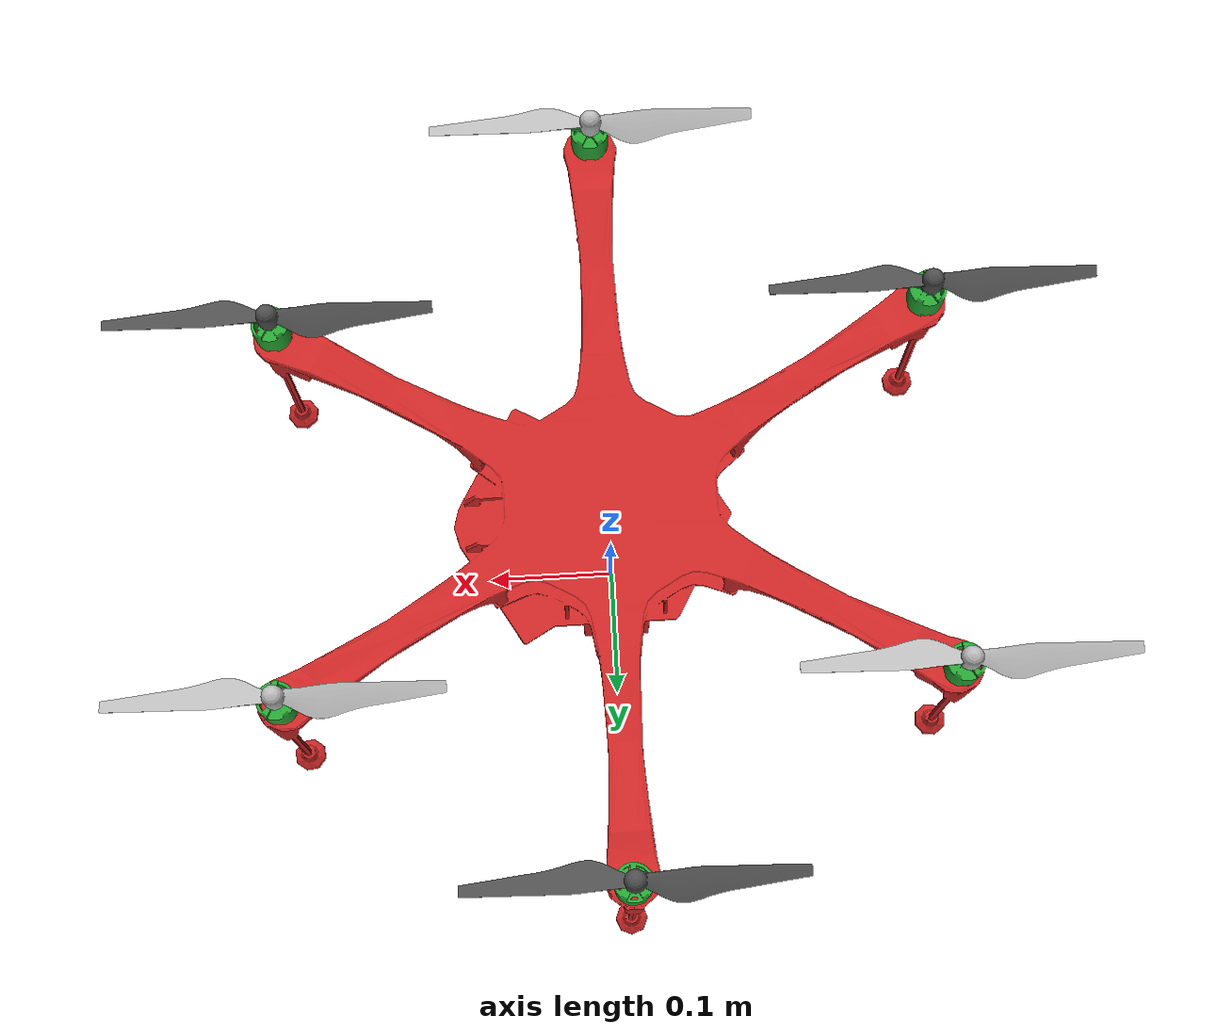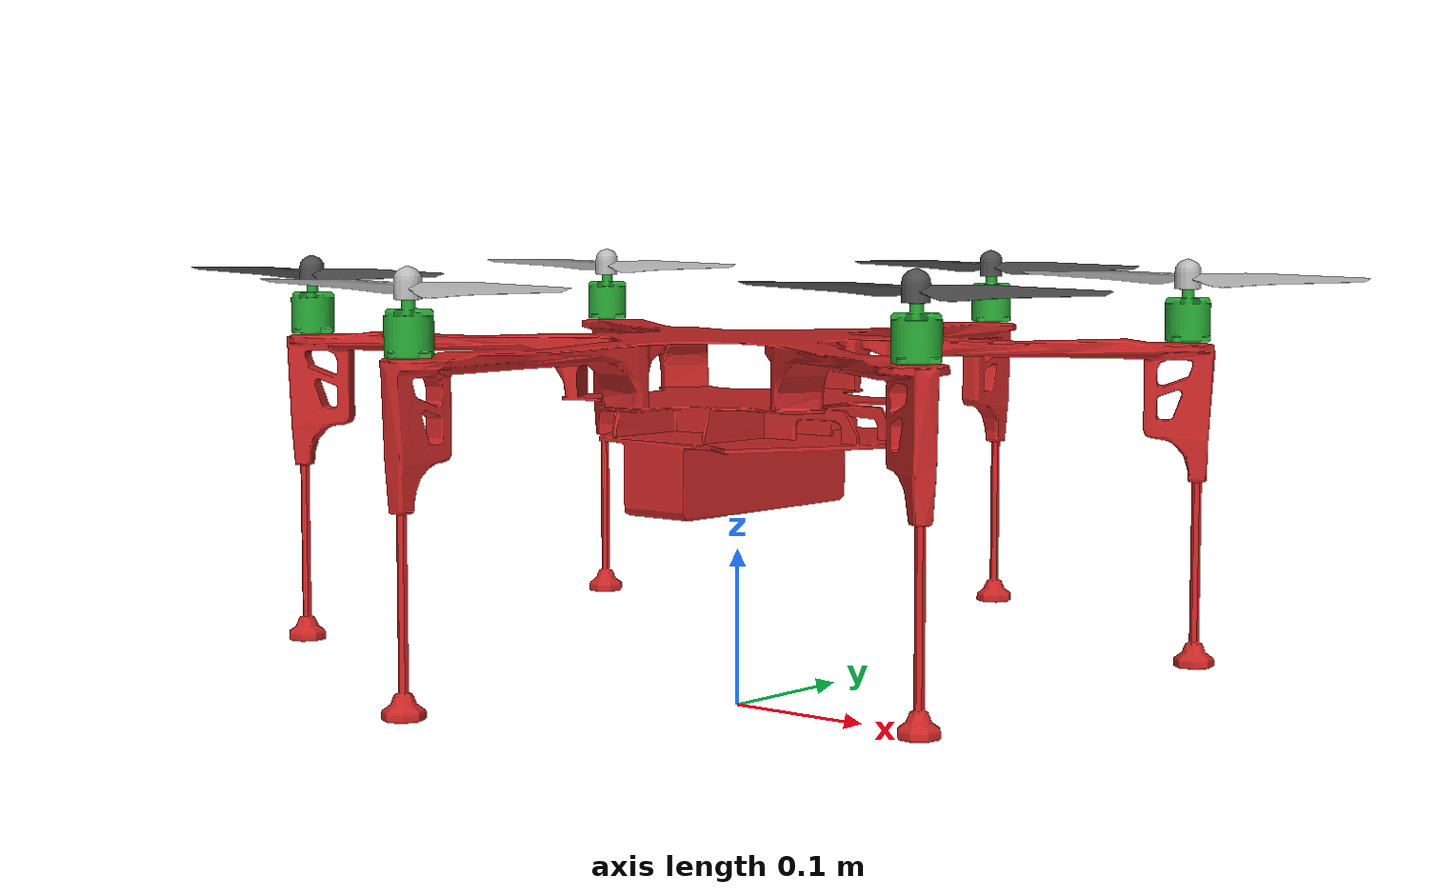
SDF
<?xml version='1.0'?>
<sdf version='1.5'>
  <model name='MBZIRColo_base'>
    <pose>0 0 0.194923 0 0 0</pose>
    <link name='base_link'>
      <velocity_decay>
        <linear>0.0</linear>
        <angular>0.0</angular>
      </velocity_decay>
      <inertial>
        <pose>0 0 0 0 0 0</pose>
        <mass>2.4</mass>
        <inertia>
          <ixx>0.0300</ixx>
          <ixy>0</ixy>
          <ixz>0</ixz>
          <iyy>0.0300</iyy>
          <iyz>0</iyz>
          <izz>0.045</izz>
        </inertia>
      </inertial>
      <collision name='base_link_collision'>
        <pose>0 0 -0.08 0 0 0</pose>
        <geometry>
          <box>
            <size>0.70 0.70 0.23</size>
          </box>
        </geometry>
        <surface>
          <contact>
            <ode>
              <max_vel>100.0</max_vel>
              <min_depth>0.001</min_depth>
            </ode>
          </contact>
          <friction>
            <ode>
              <mu>1.0</mu>
              <mu2>1.0</mu2>
            </ode>
          </friction>
        </surface>
      </collision>
      <!--DRONE VISUALS-->
      <visual name='chassis_visual'>
        <pose frame=''>0 0 0 1.57 0 0</pose>
        <geometry>
          <mesh>
            <scale>0.001 0.001 0.001</scale>
            <uri>model://MBZIRColo_base/meshes/telaio.stl</uri>
          </mesh>
        </geometry>
        <material>
          <script>
            <name>Gazebo/RedBright</name>
            <uri>__default__</uri>
          </script>
        </material>
        <transparency>0</transparency>
        <cast_shadows>1</cast_shadows>
      </visual>
      <visual name='rotor_0_motor_visual'>
        <pose>0 -0.28 0.04 1.57 -0 0</pose>
        <geometry>
          <mesh>
            <scale>0.001 0.001 0.001</scale>
            <uri>model://MBZIRColo_base/meshes/motore.stl</uri>
          </mesh>
        </geometry>
        <material>
          <script>
            <name>Gazebo/Green</name>
            <uri>__default__</uri>
          </script>
        </material>
        <transparency>0</transparency>
        <cast_shadows>1</cast_shadows>
      </visual>

      <visual name='rotor_1_motor_visual'>
        <pose frame=''>0.0 0.28 0.04 1.57 0 0</pose>
        <geometry>
          <mesh>
            <scale>0.001 0.001 0.001</scale>
            <uri>model://MBZIRColo_base/meshes/motore.stl</uri>
          </mesh>
        </geometry>
        <material>
          <script>
            <name>Gazebo/Green</name>
            <uri>__default__</uri>
          </script>
        </material>
        <transparency>0</transparency>
        <cast_shadows>1</cast_shadows>
      </visual>

      <visual name='rotor_2_motor_visual'>
        <pose frame=''>0.2425 0.14 0.04 1.57 0 0</pose>
        <geometry>
          <mesh>
            <scale>0.001 0.001 0.001</scale>
            <uri>model://MBZIRColo_base/meshes/motore.stl</uri>
          </mesh>
        </geometry>
        <material>
          <script>
            <name>Gazebo/Green</name>
            <uri>__default__</uri>
          </script>
        </material>
        <transparency>0</transparency>
        <cast_shadows>1</cast_shadows>
      </visual>

      <visual name='rotor_3_motor_visual'>
        <pose frame=''>-0.2425 -0.14 0.04 1.57 0 0</pose>
        <geometry>
          <mesh>
            <scale>0.001 0.001 0.001</scale>
            <uri>model://MBZIRColo_base/meshes/motore.stl</uri>
          </mesh>
        </geometry>
        <material>
          <script>
            <name>Gazebo/Green</name>
            <uri>__default__</uri>
          </script>
        </material>
        <transparency>0</transparency>
        <cast_shadows>1</cast_shadows>
      </visual>

      <visual name='rotor_4_motor_visual'>
        <pose frame=''>0.2425 -0.14 0.04 1.57 0 0</pose>
        <geometry>
          <mesh>
            <scale>0.001 0.001 0.001</scale>
            <uri>model://MBZIRColo_base/meshes/motore.stl</uri>
          </mesh>
        </geometry>
        <material>
          <script>
            <name>Gazebo/Green</name>
            <uri>__default__</uri>
          </script>
        </material>
        <transparency>0</transparency>
        <cast_shadows>1</cast_shadows>
      </visual>

      <visual name='rotor_5_motor_visual'>
        <pose frame=''>-0.2425 0.14 0.04 1.57 0 0</pose>
        <geometry>
          <mesh>
            <scale>0.001 0.001 0.001</scale>
            <uri>model://MBZIRColo_base/meshes/motore.stl</uri>
          </mesh>
        </geometry>
        <material>
          <script>
            <name>Gazebo/Green</name>
            <uri>__default__</uri>
          </script>
        </material>
        <transparency>0</transparency>
        <cast_shadows>1</cast_shadows>
      </visual>

    </link>

    <link name='MBZIRColo/ground_truth/odometry_sensorgt_link'>
      <pose>0 0 0 0 -0 0</pose>
      <inertial>
        <pose>0 0 0 0 -0 0</pose>
        <mass>0.15</mass>
        <inertia>
          <ixx>0.0001</ixx>
          <ixy>0</ixy>
          <ixz>0</ixz>
          <iyy>0.0002</iyy>
          <iyz>0</iyz>
          <izz>0.0002</izz>
        </inertia>
      </inertial>
    </link>

    <joint name='MBZIRColo/ground_truth/odometry_sensorgt_joint' type='revolute'>
      <child>MBZIRColo/ground_truth/odometry_sensorgt_link</child>
      <parent>base_link</parent>
      <axis>
        <xyz>0 0 1</xyz>
        <limit>
          <lower>0</lower>
          <upper>0</upper>
          <effort>0</effort>
          <velocity>0</velocity>
        </limit>
        <dynamics>
          <damping>1.0</damping>
        </dynamics>
        <use_parent_model_frame>1</use_parent_model_frame>
      </axis>
      <physics>
        <ode>
          <implicit_spring_damper>1</implicit_spring_damper>
        </ode>
      </physics>
    </joint>

    <link name='imu_link'>
      <inertial>
        <pose>0 0 0 0 0 0</pose>
        <mass>0.15</mass>
        <inertia>
          <ixx>0.00001</ixx>
          <ixy>0</ixy>
          <ixz>0</ixz>
          <iyy>0.00002</iyy>
          <iyz>0</iyz>
          <izz>0.00002</izz>
        </inertia>
      </inertial>
      <sensor name="imu_sensor" type="imu">
        <pose>0 0 0 3.141593 0 0</pose>
        <always_on>1</always_on>
        <update_rate>1000.0</update_rate>
      </sensor>
    </link>

    <joint name='imu_joint' type='revolute'>
      <child>imu_link</child>
      <parent>base_link</parent>
      <axis>
        <xyz>0 0 1</xyz>
        <limit>
          <lower>0</lower>
          <upper>0</upper>
          <effort>0</effort>
          <velocity>0</velocity>
        </limit>
        <dynamics>
          <damping>1.0</damping>
        </dynamics>
        <use_parent_model_frame>1</use_parent_model_frame>
      </axis>
      <physics>
        <ode>
          <implicit_spring_damper>1</implicit_spring_damper>
        </ode>
      </physics>
    </joint>
    <!--in the ORIGINAL IRIS model, at this point, there is a commented link called imugt_link
  Removed for cleanliness, but can be fetched if needed-->

    <!--NOTE: THE reference frame of the drone is x poining FORWARD, y LEFT, z UPWARDS;
the hexa is an x frame type (meaning the FRONT is in between the 2 front legs, and 2 legs are on the
right-left axis-->
    <link name='rotor_0'>      <!-- RIGHT-->
      <pose>0 -0.28 0.023 0 -0 0</pose>      <!-- to be checked: if thesew are in fact the real dimension of our drone-->
      <inertial>
        <pose>0 0 0 0 -0 0</pose>
        <mass>0.025</mass>
        <inertia>
          <ixx>9.75e-06</ixx>
          <ixy>0</ixy>
          <ixz>0</ixz>
          <iyy>0.000166704</iyy>
          <iyz>0</iyz>
          <izz>0.000167604</izz>
        </inertia>
      </inertial>
      <collision name='rotor_0_collision'>
        <pose>0 0 0.06 0 -0 0</pose>
        <geometry>
          <cylinder>
            <length>0.01</length>
            <radius>0.12</radius>
          </cylinder>
        </geometry>
        <surface>
          <contact>
            <ode/>
          </contact>
          <friction>
            <ode/>
          </friction>
        </surface>
      </collision>
      <visual name='rotor_0_visual'>
        <pose frame=''>0.016 -0.0059 0.06 0 -1.57 0</pose>        <!--numbers found by hand -->
        <geometry>
          <mesh>
            <scale>0.001 0.001 0.001</scale>
            <uri>model://MBZIRColo_base/meshes/elica.stl</uri>
          </mesh>
        </geometry>
        <transparency>0</transparency>
        <cast_shadows>1</cast_shadows>
      </visual>
      <gravity>1</gravity>
      <velocity_decay/>
      <self_collide>0</self_collide>
    </link>
    <joint name='rotor_0_joint' type='revolute'>
      <child>rotor_0</child>
      <parent>base_link</parent>
      <axis>
        <xyz>0 0 1</xyz>
        <limit>
          <lower>-1e+16</lower>
          <upper>1e+16</upper>
        </limit>
        <dynamics>
          <damping>0.004</damping>
        </dynamics>
        <use_parent_model_frame>1</use_parent_model_frame>
      </axis>
      <physics>
        <ode>
          <implicit_spring_damper>1</implicit_spring_damper>
        </ode>
      </physics>
    </joint>

    <link name='rotor_1'>      <!--LEFT-->
      <pose>0.0 0.28 0.023 0 -0 0</pose>
      <inertial>
        <pose>0 0 0 0 -0 0</pose>
        <mass>0.025</mass>
        <inertia>
          <ixx>9.75e-06</ixx>
          <ixy>0</ixy>
          <ixz>0</ixz>
          <iyy>0.000166704</iyy>
          <iyz>0</iyz>
          <izz>0.000167604</izz>
        </inertia>
      </inertial>
      <collision name='rotor_1_collision'>
        <pose>0 0 0 0 -0 0</pose>
        <geometry>
          <cylinder>
            <length>0.01</length>
            <radius>0.12</radius>
          </cylinder>
        </geometry>
        <surface>
          <contact>
            <ode/>
          </contact>
          <friction>
            <ode/>
          </friction>
        </surface>
      </collision>
      <visual name='rotor_1_visual'>
        <pose frame=''>0.016 -0.0059 0.06 0 -1.57 0</pose>        <!--numbers found by hand -->
        <geometry>
          <mesh>
            <scale>0.001 0.001 0.001</scale>
            <uri>model://MBZIRColo_base/meshes/elica.stl</uri>
          </mesh>
        </geometry>
        <material>
          <script>
            <name>Gazebo/DarkGrey</name>
            <uri>__default__</uri>
          </script>
        </material>
      </visual>
      <gravity>1</gravity>
      <velocity_decay/>
      <self_collide>0</self_collide>
    </link>
    <joint name='rotor_1_joint' type='revolute'>
      <child>rotor_1</child>
      <parent>base_link</parent>
      <axis>
        <xyz>0 0 1</xyz>
        <limit>
          <lower>-1e+16</lower>
          <upper>1e+16</upper>
        </limit>
        <dynamics>
          <damping>0.004</damping>
        </dynamics>
        <use_parent_model_frame>1</use_parent_model_frame>
      </axis>
      <physics>
        <ode>
          <implicit_spring_damper>1</implicit_spring_damper>
        </ode>
      </physics>
    </joint>

    <link name='rotor_2'>      <!--FRONT LEFT-->
      <pose>0.2425 0.14 0.023 0 -0 0</pose>
      <inertial>
        <pose>0 0 0 0 -0 0</pose>
        <mass>0.025</mass>
        <inertia>
          <ixx>9.75e-06</ixx>
          <ixy>0</ixy>
          <ixz>0</ixz>
          <iyy>0.000166704</iyy>
          <iyz>0</iyz>
          <izz>0.000167604</izz>
        </inertia>
      </inertial>
      <collision name='rotor_2_collision'>
        <pose>0 0 0 0 -0 0</pose>
        <geometry>
          <cylinder>
            <length>0.01</length>
            <radius>0.12</radius>
          </cylinder>
        </geometry>
        <surface>
          <contact>
            <ode/>
          </contact>
          <friction>
            <ode/>
          </friction>
        </surface>
      </collision>
      <visual name='rotor_2_visual'>
        <pose frame=''>0.016 -0.0059 0.06 0 -1.57 0</pose>        <!--numbers found by hand -->
        <geometry>
          <mesh>
            <scale>0.001 0.001 0.001</scale>
            <uri>model://MBZIRColo_base/meshes/elica.stl</uri>
          </mesh>
        </geometry>
      </visual>
      <gravity>1</gravity>
      <velocity_decay/>
      <self_collide>0</self_collide>
    </link>
    <joint name='rotor_2_joint' type='revolute'>
      <child>rotor_2</child>
      <parent>base_link</parent>
      <axis>
        <xyz>0 0 1</xyz>
        <limit>
          <lower>-1e+16</lower>
          <upper>1e+16</upper>
        </limit>
        <dynamics>
          <damping>0.004</damping>
        </dynamics>
        <use_parent_model_frame>1</use_parent_model_frame>
      </axis>
      <physics>
        <ode>
          <implicit_spring_damper>1</implicit_spring_damper>
        </ode>
      </physics>
    </joint>

    <link name='rotor_3'>      <!--REAR RIGHT-->
      <pose>-0.2425 -0.14 0.023 0 -0 0</pose>
      <inertial>
        <pose>0 0 0 0 -0 0</pose>
        <mass>0.025</mass>
        <inertia>
          <ixx>9.75e-06</ixx>
          <ixy>0</ixy>
          <ixz>0</ixz>
          <iyy>0.000166704</iyy>
          <iyz>0</iyz>
          <izz>0.000167604</izz>
        </inertia>
      </inertial>
      <collision name='rotor_3_collision'>
        <pose>0 0 0 0 -0 0</pose>
        <geometry>
          <cylinder>
            <length>0.01</length>
            <radius>0.12</radius>
          </cylinder>
        </geometry>
        <surface>
          <contact>
            <ode/>
          </contact>
          <friction>
            <ode/>
          </friction>
        </surface>
      </collision>
      <visual name='rotor_3_visual'>
        <pose frame=''>0.016 -0.0059 0.06 0 -1.57 0</pose>        <!--numbers found by hand -->
        <geometry>
          <mesh>
            <scale>0.001 0.001 0.001</scale>
            <uri>model://MBZIRColo_base/meshes/elica.stl</uri>
          </mesh>
        </geometry>
        <material>
          <script>
            <name>Gazebo/DarkGrey</name>
            <uri>__default__</uri>
          </script>
        </material>
      </visual>
      <gravity>1</gravity>
      <velocity_decay/>
      <self_collide>0</self_collide>
    </link>
    <joint name='rotor_3_joint' type='revolute'>
      <child>rotor_3</child>
      <parent>base_link</parent>
      <axis>
        <xyz>0 0 1</xyz>
        <limit>
          <lower>-1e+16</lower>
          <upper>1e+16</upper>
        </limit>
        <dynamics>
          <damping>0.004</damping>
        </dynamics>
        <use_parent_model_frame>1</use_parent_model_frame>
      </axis>
      <physics>
        <ode>
          <implicit_spring_damper>1</implicit_spring_damper>
        </ode>
      </physics>
    </joint>

    <link name='rotor_4'>      <!--FRONT RIGHT-->
      <pose>0.2425 -0.14 0.023 0 -0 0</pose>
      <inertial>
        <pose>0 0 0 0 -0 0</pose>
        <mass>0.025</mass>
        <inertia>
          <ixx>9.75e-06</ixx>
          <ixy>0</ixy>
          <ixz>0</ixz>
          <iyy>0.000166704</iyy>
          <iyz>0</iyz>
          <izz>0.000167604</izz>
        </inertia>
      </inertial>
      <collision name='rotor_4_collision'>
        <pose>0 0 0 0 -0 0</pose>
        <geometry>
          <cylinder>
            <length>0.01</length>
            <radius>0.12</radius>
          </cylinder>
        </geometry>
        <surface>
          <contact>
            <ode/>
          </contact>
          <friction>
            <ode/>
          </friction>
        </surface>
      </collision>
      <visual name='rotor_4_visual'>
        <pose frame=''>0.016 -0.0059 0.06 0 -1.57 0</pose>        <!--numbers found by hand -->
        <geometry>
          <mesh>
            <scale>0.001 0.001 0.001</scale>
            <uri>model://MBZIRColo_base/meshes/elica.stl</uri>
          </mesh>
        </geometry>
        <material>
          <script>
            <name>Gazebo/DarkGrey</name>
            <uri>__default__</uri>
          </script>
        </material>
      </visual>
      <gravity>1</gravity>
      <velocity_decay/>
      <self_collide>0</self_collide>
    </link>
    <joint name='rotor_4_joint' type='revolute'>
      <child>rotor_4</child>
      <parent>base_link</parent>
      <axis>
        <xyz>0 0 1</xyz>
        <limit>
          <lower>-1e+16</lower>
          <upper>1e+16</upper>
        </limit>
        <dynamics>
          <damping>0.004</damping>
        </dynamics>
        <use_parent_model_frame>1</use_parent_model_frame>
      </axis>
      <physics>
        <ode>
          <implicit_spring_damper>1</implicit_spring_damper>
        </ode>
      </physics>
    </joint>

    <link name='rotor_5'>      <!--REAR LEFT-->
      <pose>-0.2425 0.14 0.023 0 -0 0</pose>
      <inertial>
        <pose>0 0 0 0 -0 0</pose>
        <mass>0.025</mass>
        <inertia>
          <ixx>9.75e-06</ixx>
          <ixy>0</ixy>
          <ixz>0</ixz>
          <iyy>0.000166704</iyy>
          <iyz>0</iyz>
          <izz>0.000167604</izz>
        </inertia>
      </inertial>
      <collision name='rotor_5_collision'>
        <pose>0 0 0 0 -0 0</pose>
        <geometry>
          <cylinder>
            <length>0.01</length>
            <radius>0.12</radius>
          </cylinder>
        </geometry>
        <surface>
          <contact>
            <ode/>
          </contact>
          <friction>
            <ode/>
          </friction>
        </surface>
      </collision>
      <visual name='rotor_5_visual'>
        <pose frame=''>0.016 -0.0059 0.06 0 -1.57 0</pose>        <!--numbers found by hand -->
        <geometry>
          <mesh>
            <scale>0.001 0.001 0.001</scale>
            <uri>model://MBZIRColo_base/meshes/elica.stl</uri>
          </mesh>
        </geometry>
      </visual>
      <gravity>1</gravity>
      <velocity_decay/>
      <self_collide>0</self_collide>
    </link>
    <joint name='rotor_5_joint' type='revolute'>
      <child>rotor_5</child>
      <parent>base_link</parent>
      <axis>
        <xyz>0 0 1</xyz>
        <limit>
          <lower>-1e+16</lower>
          <upper>1e+16</upper>
        </limit>
        <dynamics>
          <damping>0.004</damping>
        </dynamics>
        <use_parent_model_frame>1</use_parent_model_frame>
      </axis>
      <physics>
        <ode>
          <implicit_spring_damper>1</implicit_spring_damper>
        </ode>
      </physics>
    </joint>

    <static>0</static>
  </model>
</sdf>
